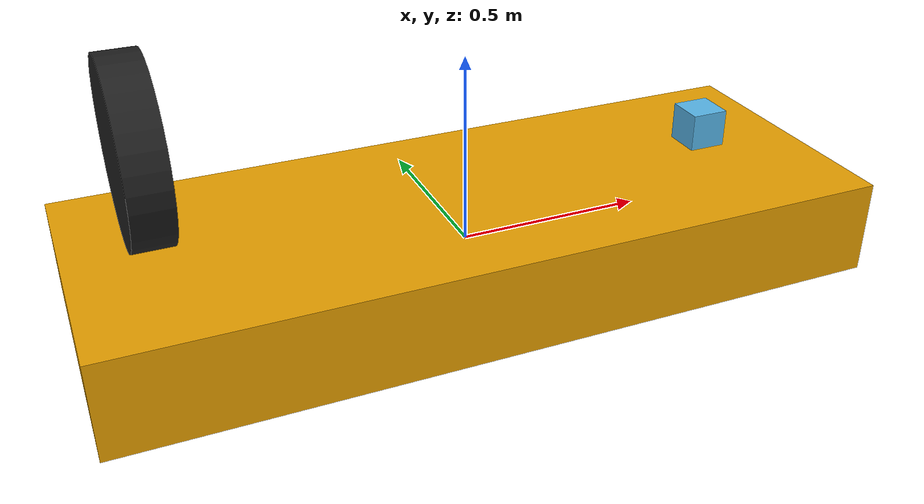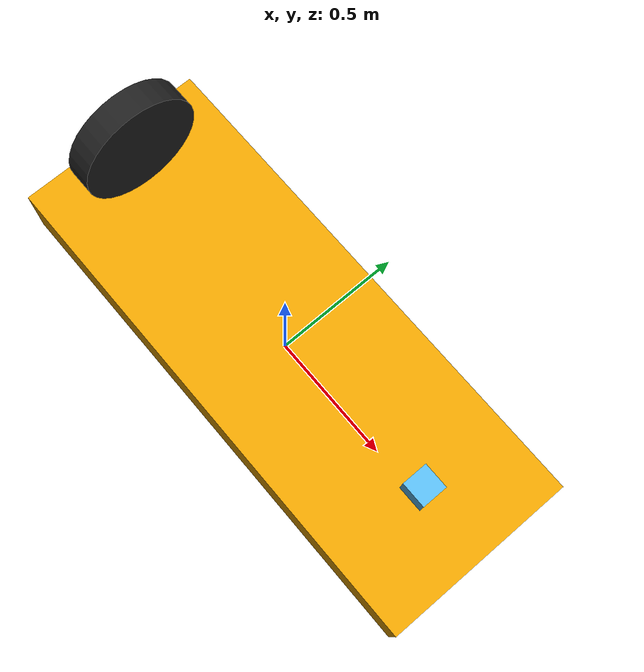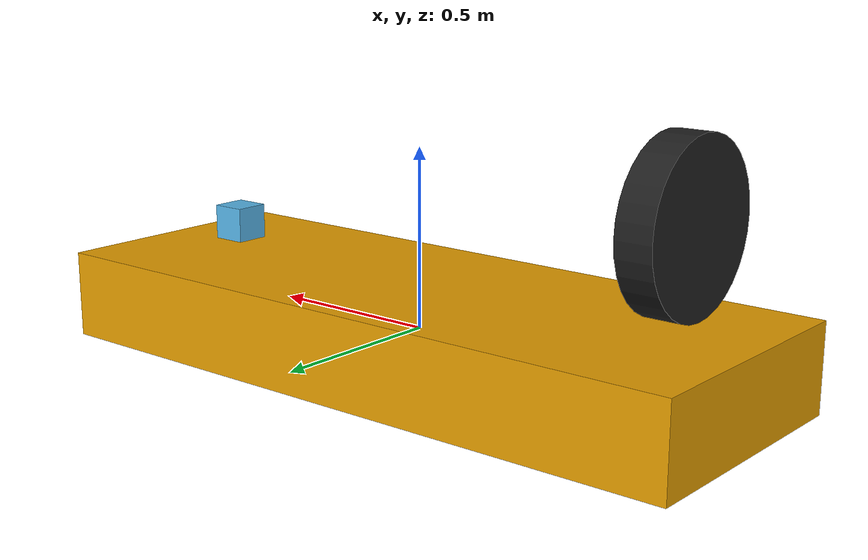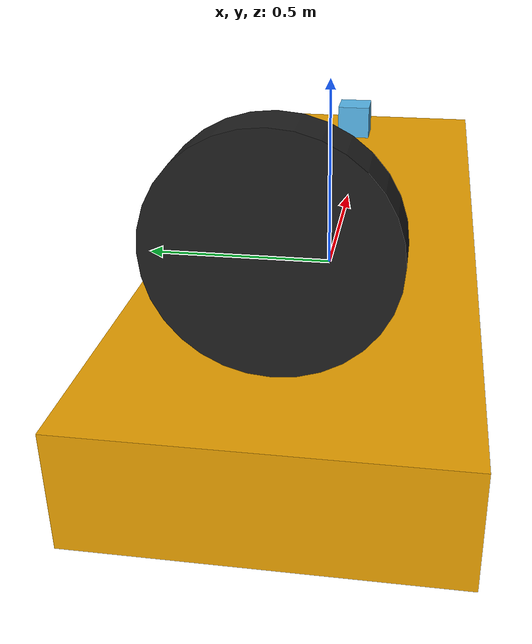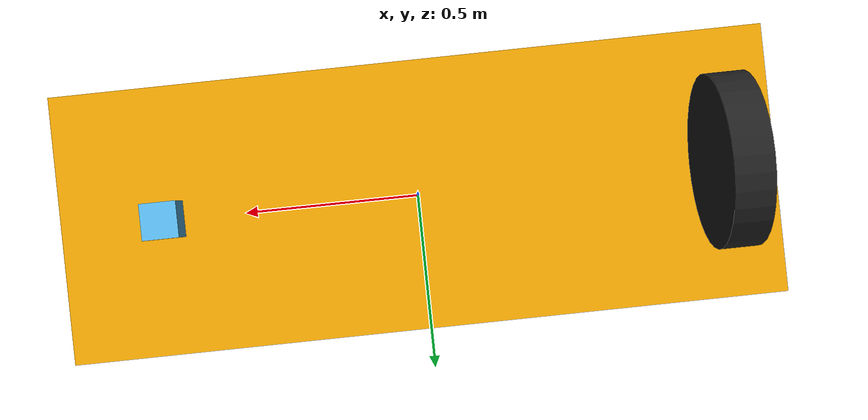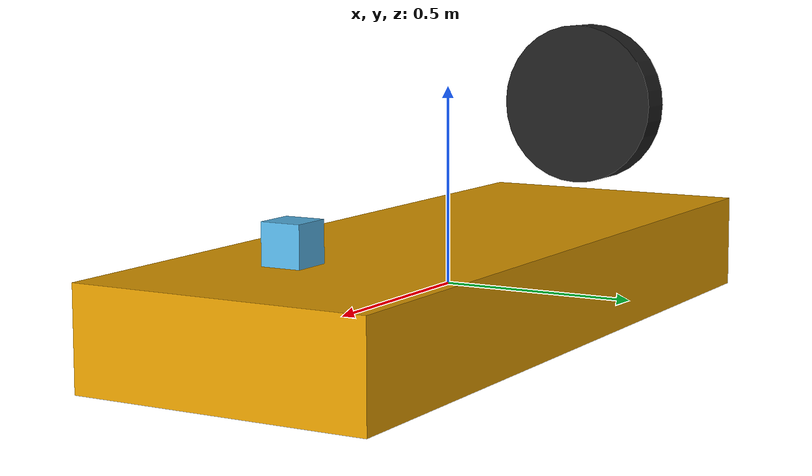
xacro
<?xml version="1.0"?>

<robot name="airboat" xmlns:xacro="http://www.ros.org/wiki/xacro">

    <xacro:include filename="$(find usv_sim)/xacro/boat_subdivided_tmp.xacro" />

    <!-- Plugin list -->

    <gazebo>
         <plugin name="freefloating_gazebo_control" filename="libfreefloating_gazebo_control.so">
            <switchService>switch</switchService>
            <updateRate>100</updateRate>
            <link>fwd</link>
            <thruster>
                <effortUnderWater>100</effortUnderWater>
				<effortOverWater>100</effortOverWater>
                <name>fwd</name>
            </thruster>
        </plugin>
    </gazebo>

    <!-- Define one steering thruster, with assumed force control in Z-direction -->
    <xacro:airthruster_link name="fwd" xyz="-0.8 0 0.4" rpy="0 ${-PI/2} 0" effort="100" velocity="20" rotationAxis="1 0 0" lowerLimit="-${PI/4}" upperLimit="${PI/4}"/>

</robot>

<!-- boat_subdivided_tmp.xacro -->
<xacro xmlns:xacro="http://www.ros.org/wiki/xacro">

    <xacro:property name="PI" value="3.1415926535897931"/>

    <!-- Body properties -->
    <xacro:property name="front_body_mass" value="5"/>
    <xacro:property name="back_body_mass" value="5"/>
    <xacro:property name="middle_body_mass" value="5"/>
    <xacro:property name="rear_body_mass" value="5"/>
    <xacro:property name="front_body_mass" value="2"/>
    <xacro:property name="back_water_displaced_mass" value="40"/>
    <xacro:property name="middle_water_displaced_mass" value="40"/>
    <xacro:property name="front_water_displaced_mass" value="25"/>
    <xacro:property name="scale" value="0.3"/>
    <xacro:property name="bl1" value=".1" />
    <xacro:property name="bl2" value=".1" />
    <xacro:property name="windType" value="global" />
    <xacro:property name="waterType" value="global" />

    <link name="base_link">
        <visual>
          <origin rpy="0 0 0" xyz="0 0 0"/>
          <geometry>
              <box size="2 0.75 0.25"/>
          </geometry>
        </visual>

        <collision>
          <origin rpy="0 0 0" xyz="0 0 0"/>
          <geometry>
              <box size="2 0.75 0.25"/>
          </geometry>
        </collision>

        <inertial>
            <origin rpy="0 0 0" xyz="0 0 0"/>
          <mass value="${middle_body_mass}"/>
          <inertia ixx="0.1" ixy="0.0" ixz="0.0" iyy="0.4" iyz="0.0" izz="0.4"/>
        </inertial>

        <buoyancy>
			<compensation>${middle_water_displaced_mass/middle_body_mass}</compensation>
			<origin xyz="${0.35*scale} ${0.44*scale} ${-0.15*scale}"/>
			<limit radius="0.1"/>
			<damping rpy="20 20 20" xyz="20 40 50"/>
         	<windVelocity>${windType}</windVelocity>
			<frontal_area>0.0</frontal_area>
			<lateral_area>0.06</lateral_area>
			<lateral_length>1.2</lateral_length>
	  		<fluidVelocity>${waterType}</fluidVelocity>
        </buoyancy>
    </link>

    <!-- Thruster link -->
    <xacro:macro name="thruster_link" params="name xyz rpy rotationAxis effort:=50 velocity:=5 lowerLimit upperLimit parentLink:=back_r_link">
        <joint name="${name}_joint" type="revolute">
            <parent link="${parentLink}"/>
            <child link="${name}"/>
            <origin rpy="${rpy}" xyz="${xyz}"/>
            <dynamics damping="10.0"/>
            <axis xyz="${rotationAxis}"/>
            <limit effort="${effort}" velocity="${velocity}" lower="${lowerLimit}" upper="${upperLimit}" />
        </joint>

        <link name="${name}">
            <buoyancy>
				<compensation>0.8</compensation>
	        	<fluidVelocity>${windType}</fluidVelocity>
	    	</buoyancy>
	    	<collision>
          		<origin xyz="${-0.15*scale} 0 ${0*scale}" rpy="0 0 0"/>
          		<geometry>
          		    <mesh filename="package://usv_sim/meshes/simpleHull3/thruster.dae" scale="${scale} ${scale} ${scale}"/>
          		</geometry>
        	</collision>

            <visual name="${name}">
                <origin xyz="${-0.15*scale} 0 ${0*scale}" rpy="0 0 0" />
                <geometry>
                    <mesh filename="package://usv_sim/meshes/simpleHull3/thruster.dae" scale="${scale} ${scale} ${scale}"/>
                </geometry>
                <material name="black">
                    <color rgba="255 255 255 1"/>
                </material>
            </visual>

            <inertial>
                <mass value="5"/>
                <origin xyz="${-0.2*scale} 0 ${0.3*scale}" rpy="0 0 0" />
                <inertia
                    ixx=".1"
                    ixy="0.0"
                    ixz="0.0"
                    iyy=".1"
                    iyz="0.0"
                    izz=".1"/>
            </inertial>
        </link>

        <gazebo reference="${name}">
            <material>Gazebo/Black</material>
        </gazebo>
    </xacro:macro>

    <xacro:macro name="thruster_dummy_link" params="name xyz rpy">
        <joint name="${name}" type="fixed">
            <parent link="base_link"/>
            <child link="${name}"/>
            <origin rpy="${rpy}" xyz="${xyz}"/>
        </joint>
        <link name="${name}"/>
    </xacro:macro>

    <!-- Thruster link -->
    <xacro:macro name="airthruster_link" params="name xyz rpy rotationAxis effort:=100 velocity:=20 lowerLimit upperLimit parentLink:=base_link">
        <joint name="${name}_joint" type="revolute">
            <parent link="${parentLink}"/>
            <child link="${name}"/>
            <origin rpy="${rpy}" xyz="${xyz}"/>
            <dynamics damping="10.0"/>
            <axis xyz="${rotationAxis}"/>
            <limit effort="${effort}" velocity="${velocity}" lower="${lowerLimit}" upper="${upperLimit}" />
        </joint>

        <link name="${name}">
            <buoyancy>
				<compensation>1.0</compensation>
	        	<fluidVelocity>${waterType}</fluidVelocity>
	    	</buoyancy>
	    	<collision>
          		<origin xyz="0 0 0" rpy="0 0 0"/>
          		<geometry>
          			<box size="${bl1} ${bl1} ${bl2}" />
          		</geometry>
        	</collision>

            <visual name="${name}">
                <origin xyz="0 0 0" rpy="0 0 0" />
                <geometry>
                    	<mesh filename="package://usv_sim/meshes/simpleHull3/airPropeller.dae" scale="${scale} ${scale} ${scale}"/>
                </geometry>
            </visual>

            <inertial>
                <mass value=".1"/>
                <inertia
                    ixx=".1"
                    ixy="0.0"
                    ixz="0.0"
                    iyy=".1"
                    iyz="0.0"
                    izz=".1"/>
            </inertial>
        </link>

        <gazebo reference="${name}">
            <material>Gazebo/Black</material>
        </gazebo>
    </xacro:macro>

    <xacro:macro name="thruster_dummy_link" params="name xyz rpy">
        <joint name="${name}" type="fixed">
            <parent link="base_link"/>
            <child link="${name}"/>
            <origin rpy="${rpy}" xyz="${xyz}"/>
        </joint>
        <link name="${name}"/>
    </xacro:macro>

    <!-- Rudder link -->
    <xacro:macro name="rudder_xacro">
        <link name="rudder">
            <inertial>
                <mass value="1" />
                <inertia
                  ixx="0.05"
                  ixy="0.0"
                  iyy="0.05"
                  ixz="0.0"
                  iyz="0.0"
                  izz="0.005"/>
            </inertial>

            <collision name="collision">
                <geometry>
                  <box size="${0.2*scale} ${0.02*scale} ${0.3*scale}" />
                </geometry>
                <origin rpy="0 0 0" xyz="${-0.1*scale} 0 0"/>
            </collision>

            <visual name="visual">
                <geometry>

                  <mesh filename="package://usv_sim/meshes/simpleHull3/box.dae" scale="${0.2*scale} ${0.02*scale} ${0.3*scale}"/>

                </geometry>
                <origin rpy="0 0 0" xyz="${-0.1*scale} 0 0"/>

            </visual>

        </link>

        <joint name="rudder_joint" type="revolute">
            <parent link="base_link"/>
            <child link="rudder"/>
            <origin rpy="0 0 0" xyz="${-1.4*scale} ${0.39*scale} ${-0.5*scale}"/>
            <dynamics damping="1.0"/>
            <axis xyz="0 0 1"/>
            <limit effort="100" velocity="5" lower="-${PI/2}" upper="${PI/2}" />
        </joint>
    </xacro:macro>

    <!-- Sensors -->

    <!-- Hokuyo Laser -->
    <joint name="hokuyo_joint" type="fixed">
        <axis xyz="0 1 0" />
        <origin xyz="0.7 0 0.2" rpy="0 0 0"/>
        <parent link="base_link"/>
        <child link="hokuyo_link"/>
    </joint>

    <link name="hokuyo_link">
        <collision name="collision">
	        <origin xyz="0 0 0" rpy="0 0 0"/>
	        <geometry>
	        	<box size="0.1 0.1 0.1"/>
	        </geometry>
        </collision>

        <visual name="visual">
        	<origin xyz="0 0 0" rpy="0 0 0"/>
        	<geometry>
        		<mesh filename="package://usv_sim/meshes/simpleHull3/box.dae" scale="0.1 0.1 0.1"/>

        	</geometry>

        </visual>

        <inertial>
        <mass value="1e-5" />
        <origin xyz="0 0 0" rpy="0 0 0"/>
        <inertia ixx="1e-6" ixy="0" ixz="0" iyy="1e-6" iyz="0" izz="1e-6" />
        </inertial>
    </link>

    <gazebo reference="hokuyo_link">
        <sensor type="gpu_ray" name="head_hokuyo_sensor">
        <pose>0 0 0 0 0 0</pose>
        <visualize>false</visualize>
        <update_rate>40</update_rate>
        <ray>
        <scan>
        <horizontal>
        <samples>720</samples>
        <resolution>1</resolution>
        <min_angle>-1.570796</min_angle>
        <max_angle>1.570796</max_angle>
        </horizontal>
        </scan>
        <range>
        <min>0.10</min>
        <max>30.0</max>
        <resolution>0.01</resolution>
        </range>
        <noise>
        <type>gaussian</type>
        <mean>0.0</mean>
        <stddev>0.01</stddev>
        </noise>
        </ray>
        <plugin name="gazebo_ros_head_hokuyo_controller" filename="libgazebo_ros_gpu_laser.so">
        <topicName>scan</topicName>
        <frameName>base_laser</frameName>
        </plugin>
        </sensor>
    </gazebo>

</xacro>
